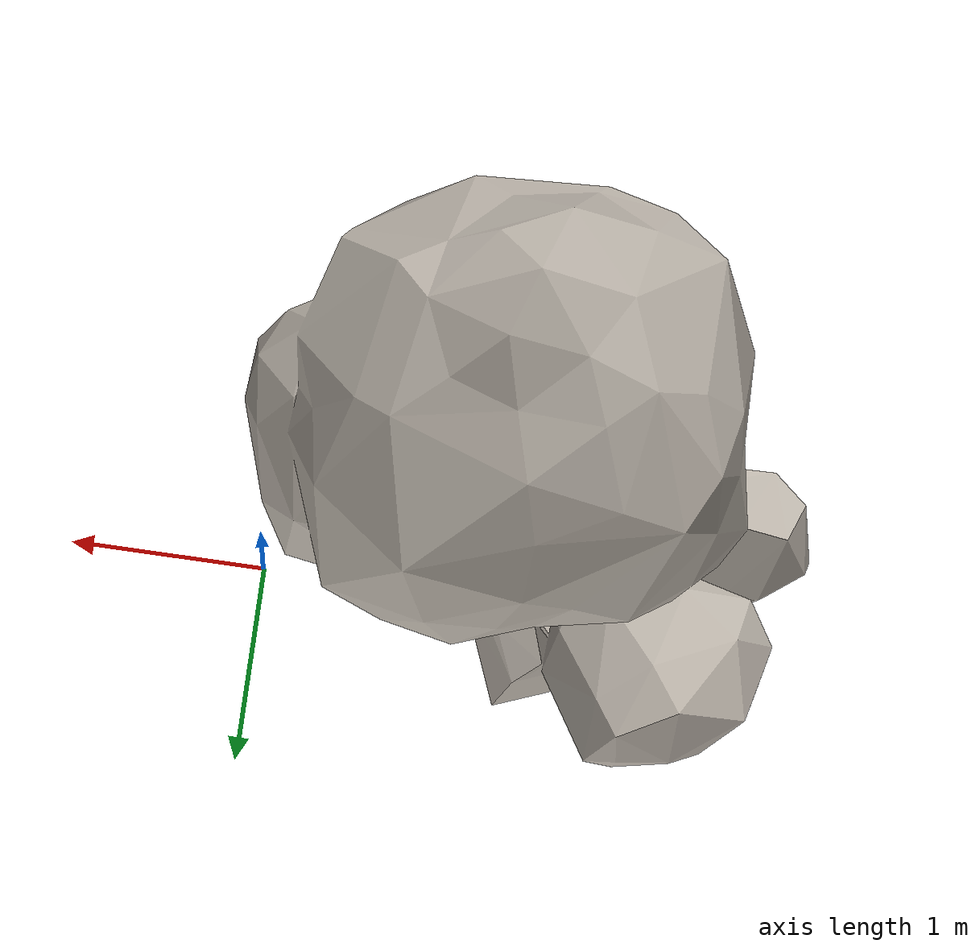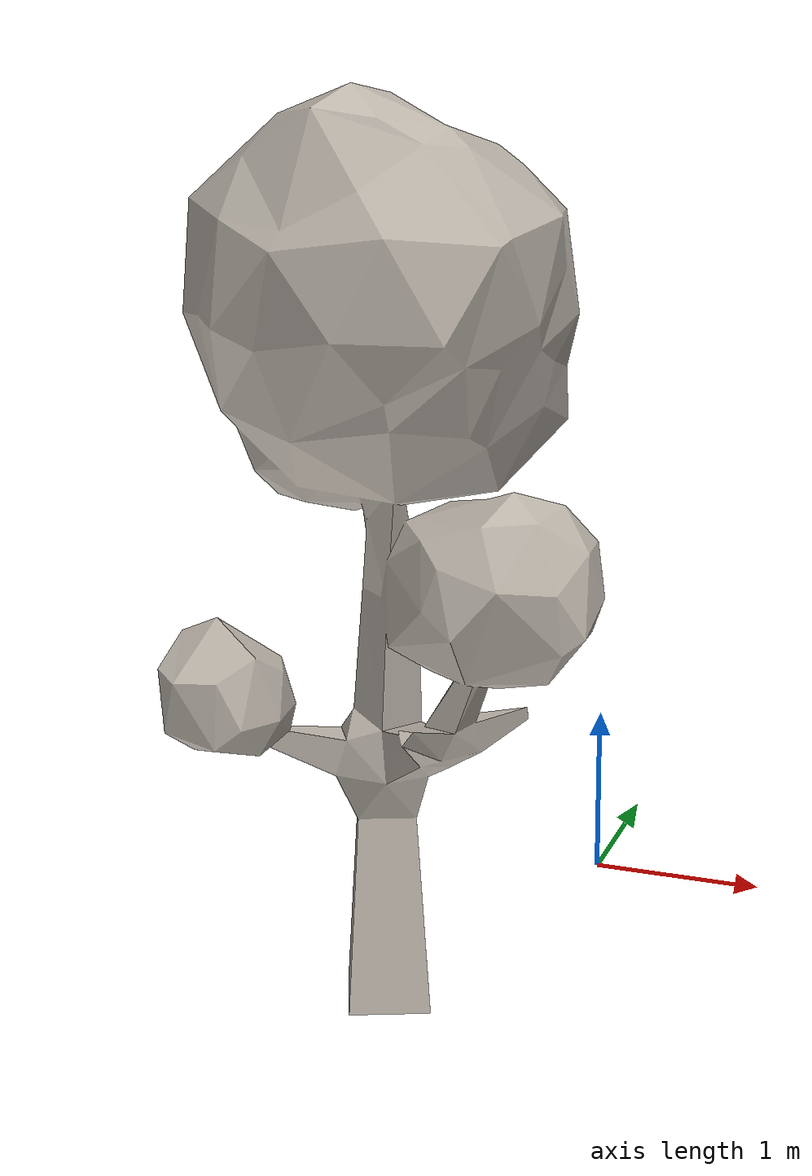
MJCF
<mujoco model="tree01">
    <asset>
        <mesh file="3D_Assets/tree1.obj" scale="0.25 0.25 0.25"/>
        <texture file="3D_Assets/tree1.png" type="2d" name="tree1" />
        <material name="tree1" reflectance="0.7" texrepeat="15 15" texture="tree1" texuniform="true"/>
    </asset>
    <worldbody>
        <body name="tree01" pos="0 0 0">
            <geom name="tree_geom" type="mesh" mesh="tree1" size="1.0 1.0 0.0" rgba=".5 .5 .5 1." material="tree1"/>
        </body>
    </worldbody>
</mujoco>
